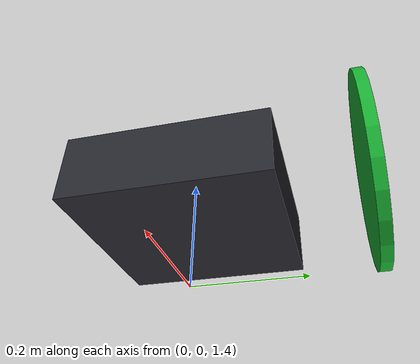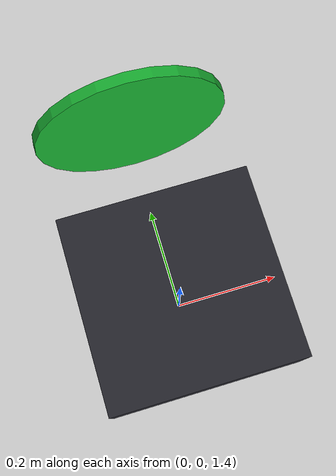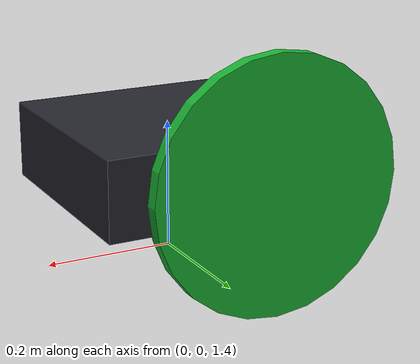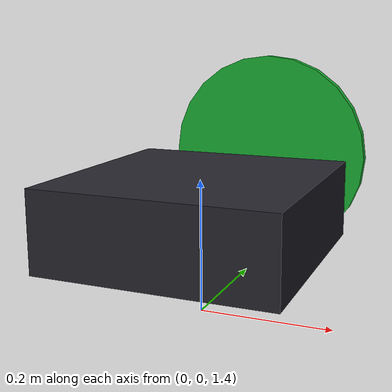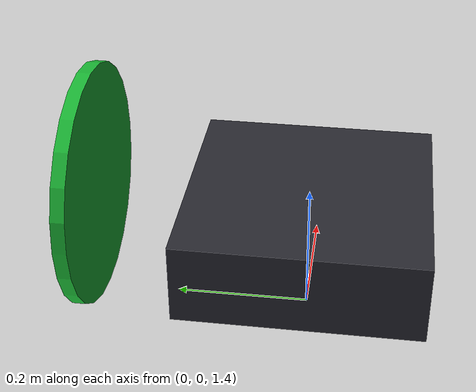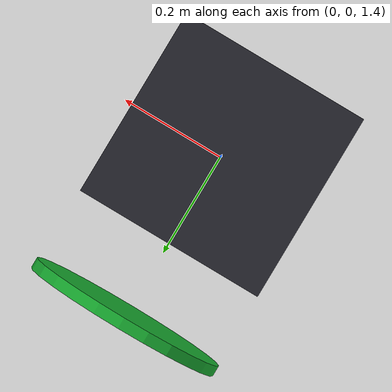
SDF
<?xml version="1.0"?>
<sdf version="1.8">
  <model name="catcher_drone">
    <pose>0 0 1.55 0 0 1.5708</pose>
    <link name="base_link">
      <inertial>
        <mass>1.4</mass>
        <inertia>
          <ixx>0.012</ixx>
          <iyy>0.012</iyy>
          <izz>0.021</izz>
        </inertia>
      </inertial>
      <collision name="collision">
        <geometry>
          <box><size>0.35 0.35 0.12</size></box>
        </geometry>
        <surface>
          <contact>
            <collide_bitmask>0x01</collide_bitmask>
          </contact>
        </surface>
      </collision>
      <visual name="visual">
        <geometry>
          <box><size>0.35 0.35 0.12</size></box>
        </geometry>
        <material>
          <ambient>0.1 0.1 0.12 1</ambient>
          <diffuse>0.15 0.15 0.18 1</diffuse>
        </material>
      </visual>
      <!-- Catch net, 0.32 m forward of CoM (matches InterceptPlanner.catch_offset). -->
      <visual name="net">
        <pose>0.32 0 0.04 0 1.5708 0</pose>
        <geometry>
          <cylinder>
            <radius>0.18</radius>
            <length>0.02</length>
          </cylinder>
        </geometry>
        <material>
          <ambient>0.05 0.55 0.15 1</ambient>
          <diffuse>0.1 0.7 0.2 1</diffuse>
        </material>
      </visual>
      <!-- hfov = 2*atan(320/500) so pinhole fx matches capture_sim.Camera -->
      <sensor name="front_camera" type="camera">
        <pose>0.08 0 0 0 0 0</pose>
        <always_on>true</always_on>
        <update_rate>30</update_rate>
        <topic>catcher/image</topic>
        <camera name="cam">
          <horizontal_fov>1.142</horizontal_fov>
          <image>
            <width>640</width>
            <height>480</height>
            <format>R8G8B8</format>
          </image>
          <clip>
            <near>0.08</near>
            <far>40</far>
          </clip>
        </camera>
      </sensor>
    </link>
  </model>
</sdf>
